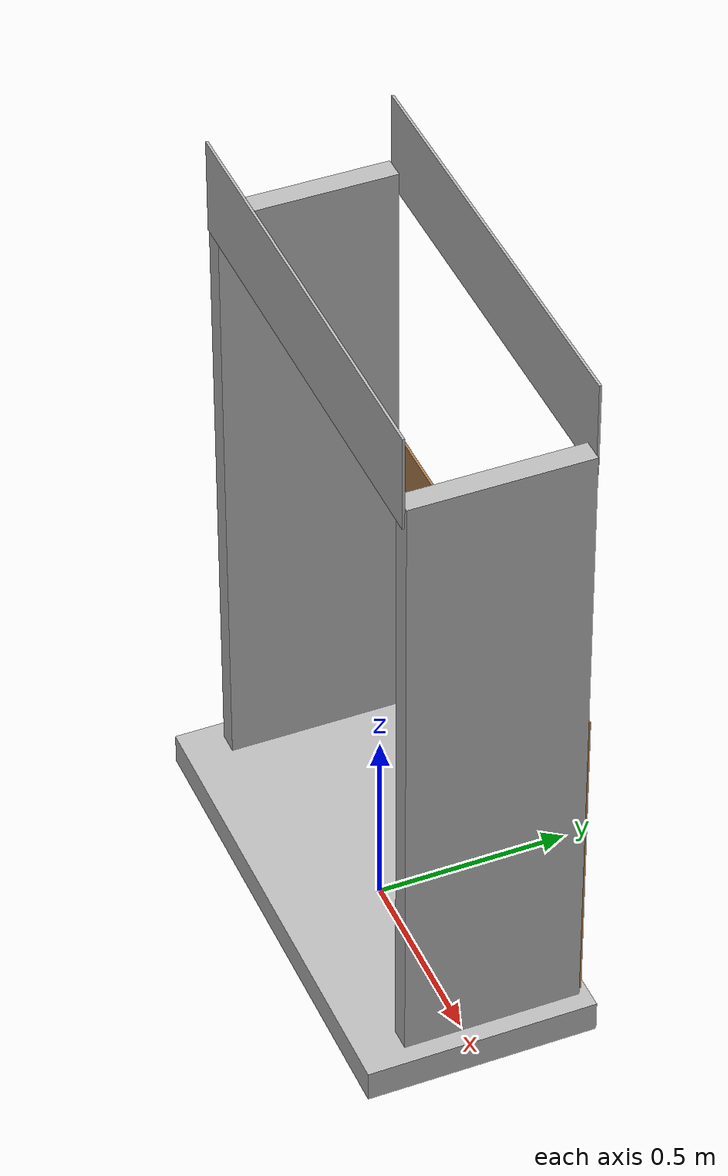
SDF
<?xml version="1.0" ?>
<sdf version="1.5">
 <model name="frc2016_drawbridge">
    <link name="base">
      <inertial>
        <mass>10</mass>
        <pose>0 0 1.0 0 0 0</pose>
        <inertia>
          <ixx>3.649073333</ixx>
          <ixy>0</ixy>
          <ixz>0</ixz>
          <iyy>4.67075333</iyy>
          <iyz>0</iyz>
          <izz>1.666486667</izz>
        </inertia>
      </inertial>

      <visual name="platform">
        <pose>0 0 0.0425 0 0 0</pose>
        <geometry>
          <box>
            <size>1.27 0.5969 0.085</size>
          </box>
        </geometry>
      </visual>
      <collision name="platform">
        <pose>0 0 0.0425 0 0 0</pose>
        <geometry>
          <box>
            <size>1.27 0.5969 0.085</size>
          </box>
        </geometry>
      </collision>

      <visual name="right_wall">
        <pose>0.55879 0.04444  0.889 0 0 0</pose>
        <geometry>
          <box>
            <size>0.05715 0.45698 1.77165</size>
          </box>
        </geometry>
      </visual>
      <collision name="right_wall">
        <pose>0.55879 0.04444  0.889 0 0 0</pose>
        <geometry>
          <box>
            <size>0.05715 0.45698 1.77165</size>
          </box>
        </geometry>
      </collision>

      <visual name="left_wall">
        <pose>-0.55879 0.04444  0.889 0 0 0</pose>
        <geometry>
          <box>
            <size>0.05715 0.45698 1.77165</size>
          </box>
        </geometry>
      </visual>
      <collision name="left_wall">
        <pose>-0.55879 0.04444  0.889 0 0 0</pose>
        <geometry>
          <box>
            <size>0.05715 0.45698 1.77165</size>
          </box>
        </geometry>
      </collision>

      <visual name="front_upper_wall">
        <pose>0 0.27611 1.84286 0 0 0</pose>
        <geometry>
          <box>
            <size>1.1557 0.006347 0.254</size>
          </box>
        </geometry>
      </visual>
      <collision name="front_upper_wall">
        <pose>0 0.27611 1.84286 0 0 0</pose>
        <geometry>
          <box>
            <size>1.1557 0.006347 0.254</size>
          </box>
        </geometry>
      </collision>

      <visual name="back_upper_wall">
        <pose>0 -0.18722 1.84286 0 0 0</pose>
        <geometry>
          <box>
            <size>1.1557 0.006347 0.254</size>
          </box>
        </geometry>
      </visual>
      <collision name="back_upper_wall">
        <pose>0 -0.18722 1.84286 0 0 0</pose>
        <geometry>
          <box>
            <size>1.1557 0.006347 0.254</size>
          </box>
        </geometry>
      </collision>
    </link>

    <link name="bridge">
      <pose>0 0.28245 0.50577 0 0 0</pose>
      <inertial>
        <mass>2</mass>
        <pose>0 -0.28245 -0.50577 0 0 0</pose>
        <inertia>
          <ixx>0.139361274</ixx>
          <ixy>0</ixy>
          <ixz>0</ixz>
          <iyy>0.35708844</iyy>
          <iyz>0</iyz>
          <izz>0.217740594</izz>
        </inertia>
      </inertial>

      <visual name="visual">
        <geometry>
          <box>
            <size>1.14298 0.006347 0.9144</size>
          </box>
        </geometry>
        <material>
          <script>
            <name>Gazebo/WoodFloor</name>
          </script>
        </material>
      </visual>

      <collision name="collision">
        <geometry>
          <box>
            <size>1.14298 0.006347 0.9144</size>
          </box>
        </geometry>
      </collision>
    </link>

    <joint type="revolute" name="bridge_joint">
      <pose>0 0 -0.4172 0 0 0</pose>
      <parent>base</parent>
      <child>bridge</child>
      <axis>
        <xyz>1 0 0</xyz>
        <limit>
          <lower>-2.0</lower>
          <upper>0</upper>
        </limit>
      </axis>
    </joint>

  </model>
</sdf>
